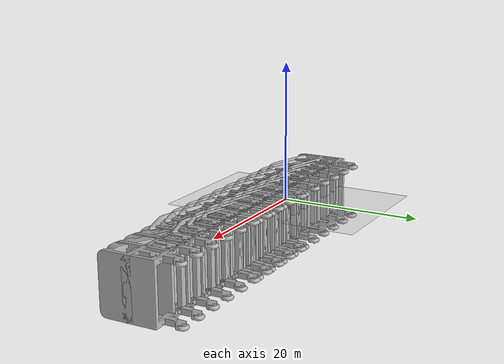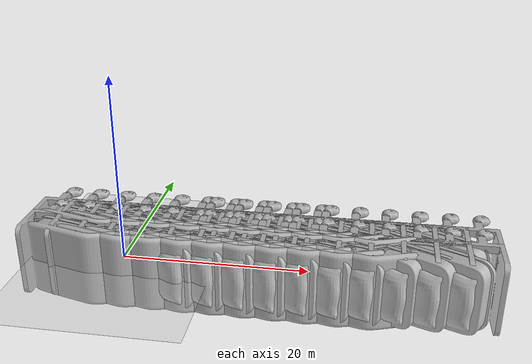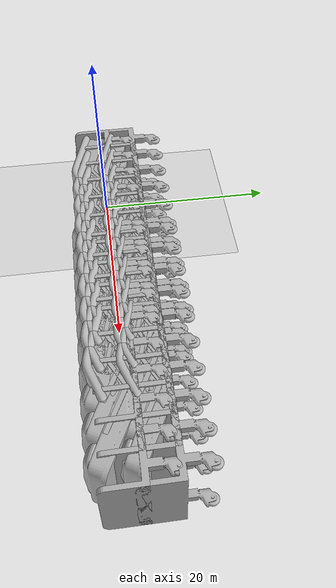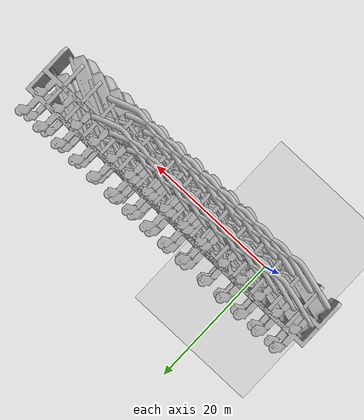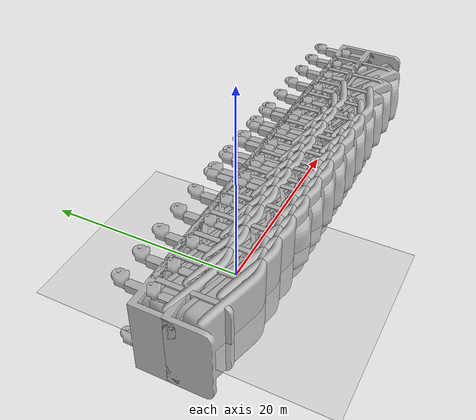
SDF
<sdf version="1.6">
 <world name="strawberry_farm">
  <scene><ambient>0.5 0.5 0.5 1</ambient><background>0.7 0.85 0.95 1</background><shadows>true</shadows></scene>
  <include><uri>model://sun</uri></include>
  <include><uri>model://dirt_plane</uri></include>
  <physics type="ode">
   <max_step_size>0.001</max_step_size>
   <real_time_update_rate>1000</real_time_update_rate>
  </physics>
  <include><uri>model://bed</uri><name>bed_0_0</name><pose>0.000 4.600 0.175 0 0 0.000</pose></include>
  <include><uri>model://bed</uri><name>bed_0_1</name><pose>0.000 7.800 0.175 0 0 0.000</pose></include>
  <include><uri>model://bed</uri><name>bed_1_0</name><pose>3.200 4.600 0.175 0 0 0.000</pose></include>
  <include><uri>model://bed</uri><name>bed_1_1</name><pose>3.200 7.800 0.175 0 0 0.000</pose></include>
  <include><uri>model://bed</uri><name>bed_2_0</name><pose>6.400 4.600 0.175 0 0 0.000</pose></include>
  <include><uri>model://bed</uri><name>bed_2_1</name><pose>6.400 7.800 0.175 0 0 0.000</pose></include>
  <include><uri>model://bed</uri><name>bed_3_0</name><pose>9.600 4.600 0.175 0 0 0.000</pose></include>
  <include><uri>model://bed</uri><name>bed_3_1</name><pose>9.600 7.800 0.175 0 0 0.000</pose></include>
  <include><uri>model://bed</uri><name>bed_4_0</name><pose>12.800 4.600 0.175 0 0 0.000</pose></include>
  <include><uri>model://bed</uri><name>bed_4_1</name><pose>12.800 7.800 0.175 0 0 0.000</pose></include>
  <include><uri>model://bed</uri><name>bed_5_0</name><pose>16.000 4.600 0.175 0 0 0.000</pose></include>
  <include><uri>model://bed</uri><name>bed_5_1</name><pose>16.000 7.800 0.175 0 0 0.000</pose></include>
  <include><uri>model://bed</uri><name>bed_6_0</name><pose>19.200 4.600 0.175 0 0 0.000</pose></include>
  <include><uri>model://bed</uri><name>bed_6_1</name><pose>19.200 7.800 0.175 0 0 0.000</pose></include>
  <include><uri>model://bed</uri><name>bed_7_0</name><pose>22.400 4.600 0.175 0 0 0.000</pose></include>
  <include><uri>model://bed</uri><name>bed_7_1</name><pose>22.400 7.800 0.175 0 0 0.000</pose></include>
  <include><uri>model://bed</uri><name>bed_8_0</name><pose>25.600 4.600 0.175 0 0 0.000</pose></include>
  <include><uri>model://bed</uri><name>bed_8_1</name><pose>25.600 7.800 0.175 0 0 0.000</pose></include>
  <include><uri>model://bed</uri><name>bed_9_0</name><pose>28.800 4.600 0.175 0 0 0.000</pose></include>
  <include><uri>model://bed</uri><name>bed_9_1</name><pose>28.800 7.800 0.175 0 0 0.000</pose></include>
 </world>
</sdf>

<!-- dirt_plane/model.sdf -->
<sdf version="1.5">
  <model name="dirt_plane">
    <static>true</static>
    <link name="link">
      <collision name="collision">
        <geometry>
          <plane>
            <normal>0 0 1</normal>
            <size>20 30</size>
          </plane>
        </geometry>
        <surface>
          <friction>
            <ode>
              <mu>100</mu>
              <mu2>50</mu2>
            </ode>
          </friction>
        </surface>
      </collision>
      <visual name="visual">
        <cast_shadows>false</cast_shadows>
        <geometry>
          <plane>
            <normal>0 0 1</normal>
            <size>20 30</size>
          </plane>
        </geometry>
        <material>
          <script>
            <uri>model://urdf/gazebo.material</uri>
            <name>Gazebo/Dirt</name>
          </script>
        </material>
      </visual>
    </link>
  </model>
</sdf>

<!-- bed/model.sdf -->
<sdf version="1.6">
  <model name="bed">
    <static>true</static>
    <link name="link">
      <visual name="visual">
        <pose>0 0 0 1.5708 0 0</pose>
        <geometry><mesh><uri>model://bed/meshes/bed.obj</uri></mesh></geometry>
      </visual>
      <collision name="collision">
        <pose>0 0 0.20 0 0 0</pose>
        <geometry><box><size>10 1.0 0.4</size></box></geometry>
      </collision>
    </link>
  </model>
</sdf>
